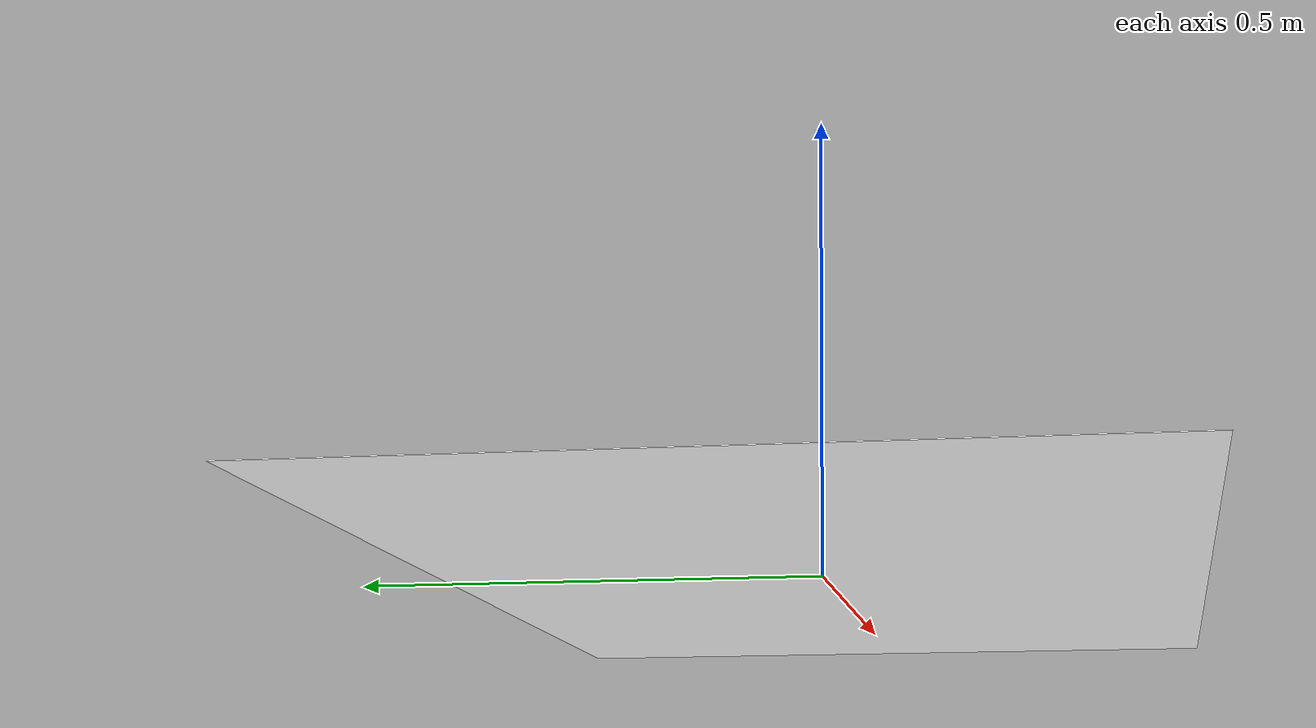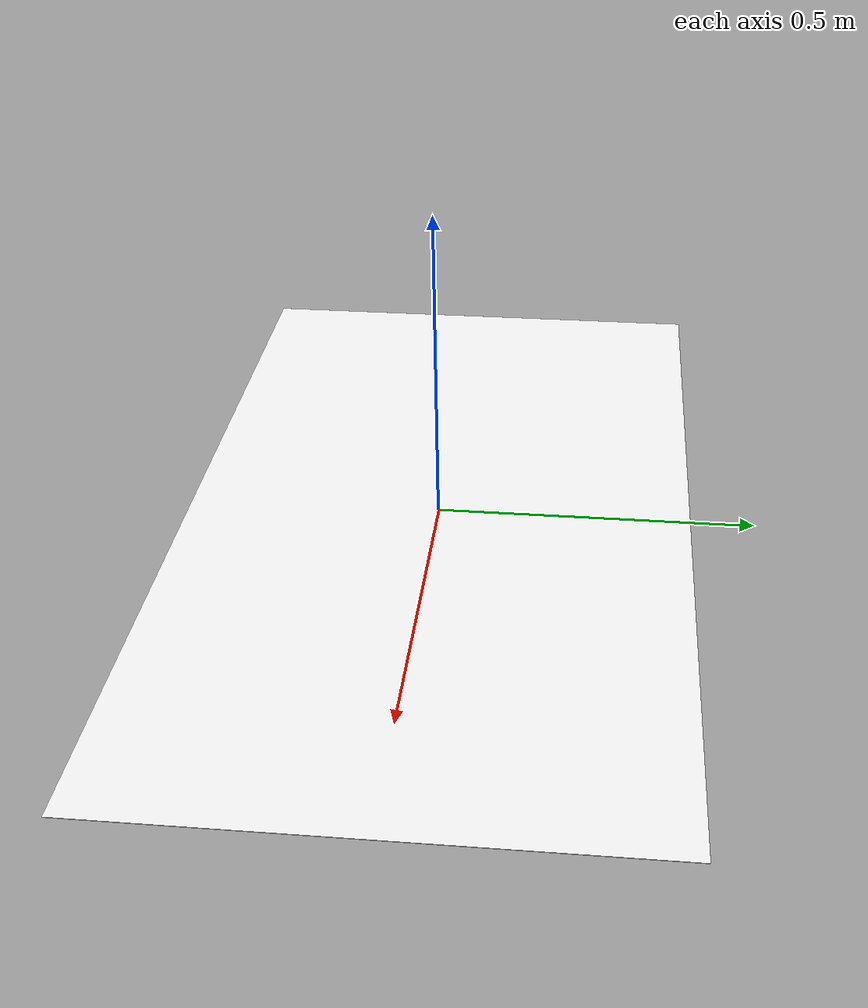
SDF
<?xml version='1.0' encoding='utf-8'?>
<sdf version="1.8">
  <model name="final_place_charging_station">
    <static>true</static>
    <link name="label">
      <visual name="label">
        <cast_shadows>false</cast_shadows>
        <geometry>
          <plane>
            <normal>0 0 1</normal>
            <size>1.4 0.8</size>
          </plane>
        </geometry>
        <material>
          <ambient>1 1 1 1</ambient>
          <diffuse>1 1 1 1</diffuse>
          <pbr>
            <metal>
              <albedo_map>model://final_place_charging_station/materials/textures/charging_station.png</albedo_map>
              <metalness>0</metalness>
              <roughness>1</roughness>
            </metal>
          </pbr>
        </material>
      </visual>
    </link>
  </model>
</sdf>
